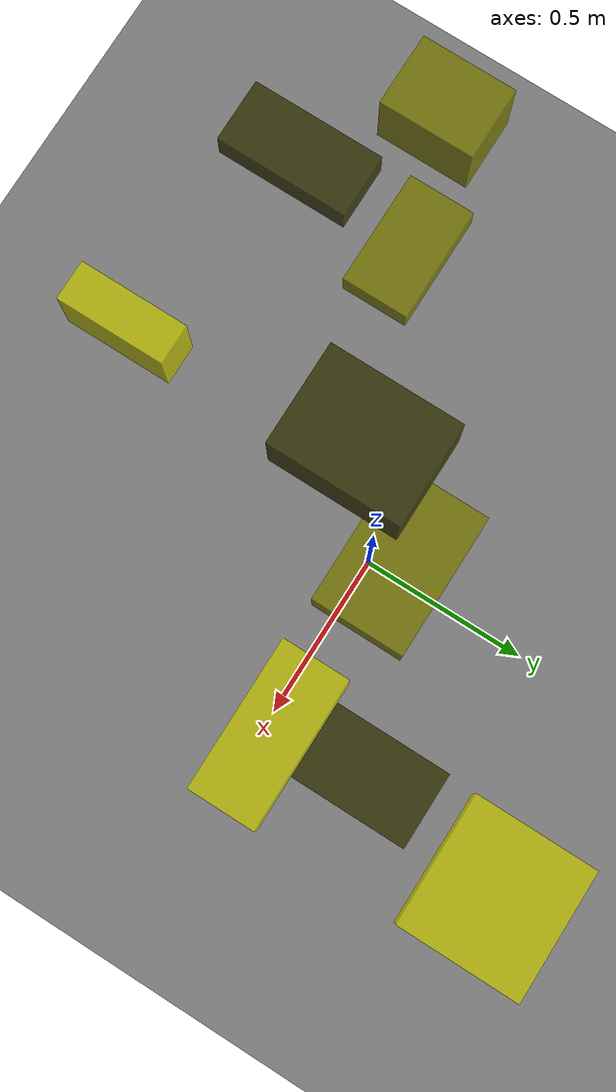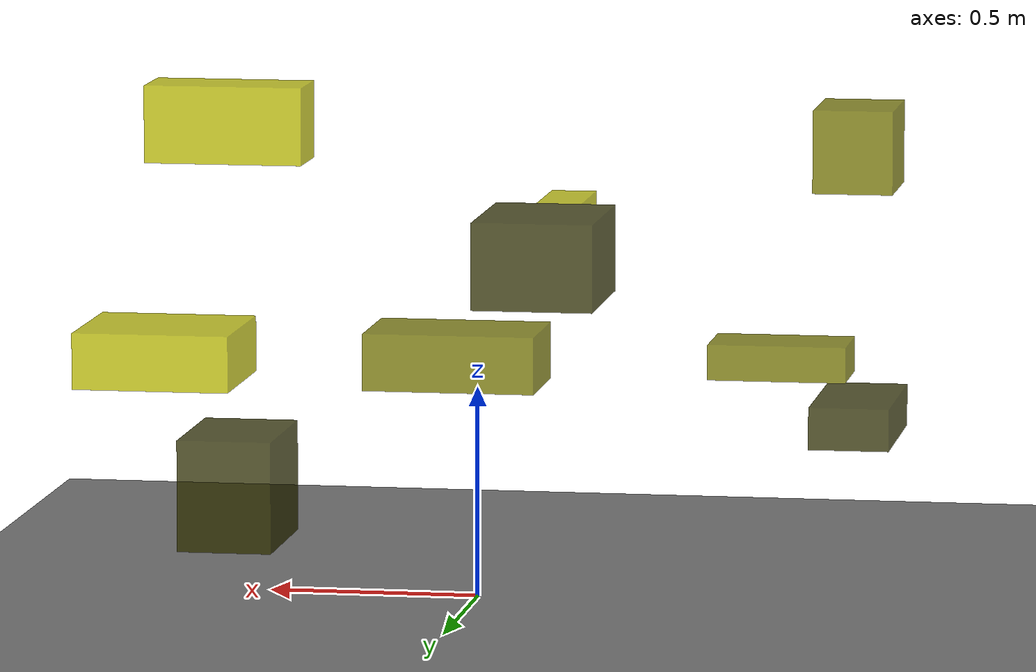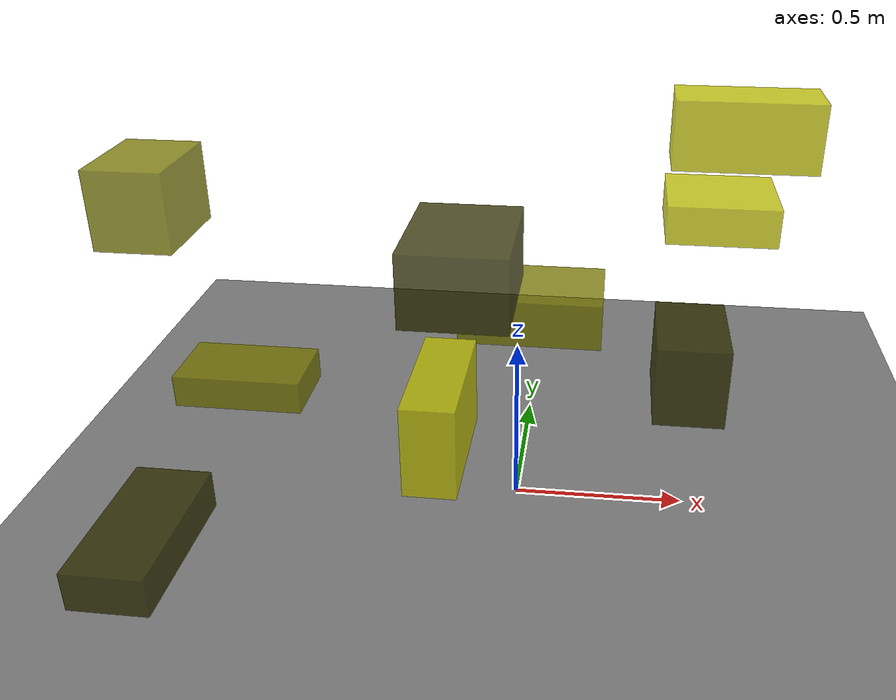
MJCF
<?xml version="1.0"?>
<mujoco model="obstacle_scene">
  <compiler angle="radian" coordinate="local"/>
  <option timestep="0.001" gravity="0 0 -9.81"/>

  <asset>
    <material name="obstacle_mat" rgba="0.8 0.8 0.0 0.8"/>
    <material name="ground_mat" rgba="0.5 0.5 0.5 1"/>
  </asset>

  <worldbody>
    <!-- Ground plane -->
    <geom name="ground" type="plane" size="3 3 0.1" material="ground_mat"/>

    <!-- Obstacles -->
    <body name="obstacle_0" pos="-0.137563 -0.122662 0.796354">
      <geom name="obs_0" type="box" size="0.143930 0.186943 0.103869" rgba="0.2 0.2 0.0 0.8"/>
    </body>
    <body name="obstacle_1" pos="-0.858822 -0.359020 1.045676">
      <geom name="obs_1" type="box" size="0.095162 0.124496 0.098993" rgba="0.5 0.5 0.0 0.8"/>
    </body>
    <body name="obstacle_2" pos="-0.086789 -0.783575 0.748477">
      <geom name="obs_2" type="box" size="0.055341 0.151485 0.100659" rgba="0.8 0.8 0.0 0.8"/>
    </body>
    <body name="obstacle_3" pos="0.516263 0.316626 0.304602">
      <geom name="obs_3" type="box" size="0.110356 0.169426 0.130486" rgba="0.2 0.2 0.0 0.8"/>
    </body>
    <body name="obstacle_4" pos="0.034266 0.094765 0.588309">
      <geom name="obs_4" type="box" size="0.202447 0.131990 0.066966" rgba="0.5 0.5 0.0 0.8"/>
    </body>
    <body name="obstacle_5" pos="0.605771 0.714856 0.677224">
      <geom name="obs_5" type="box" size="0.179523 0.168074 0.064182" rgba="0.8 0.8 0.0 0.8"/>
    </body>
    <body name="obstacle_6" pos="-0.817626 -0.747242 0.331945">
      <geom name="obs_6" type="box" size="0.097782 0.204759 0.051306" rgba="0.2 0.2 0.0 0.8"/>
    </body>
    <body name="obstacle_7" pos="-0.680666 -0.322648 0.537625">
      <geom name="obs_7" type="box" size="0.165145 0.096376 0.042178" rgba="0.5 0.5 0.0 0.8"/>
    </body>
    <body name="obstacle_8" pos="0.579484 0.078834 1.130499">
      <geom name="obs_8" type="box" size="0.187000 0.083424 0.091179" rgba="0.8 0.8 0.0 0.8"/>
    </body>
  </worldbody>
</mujoco>
